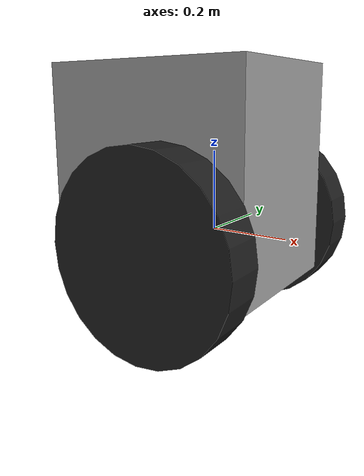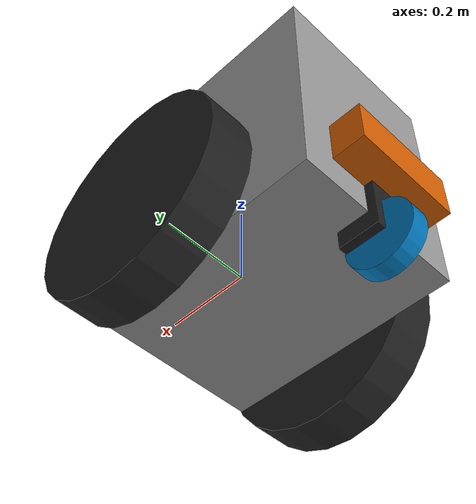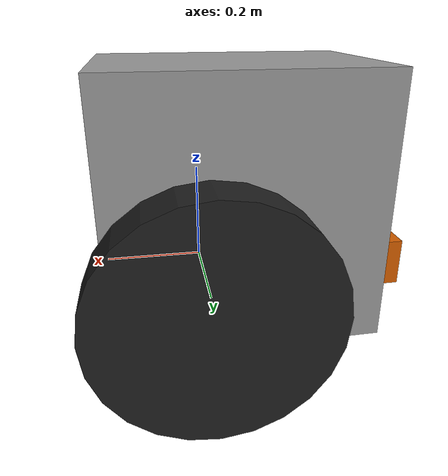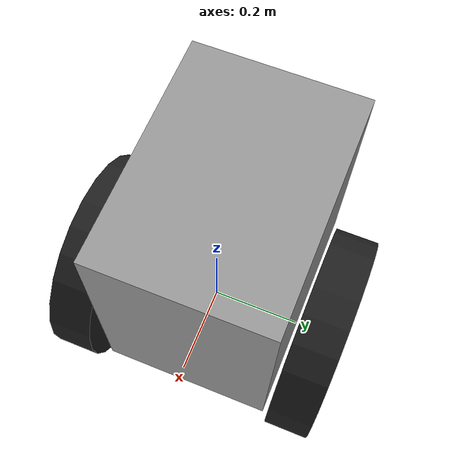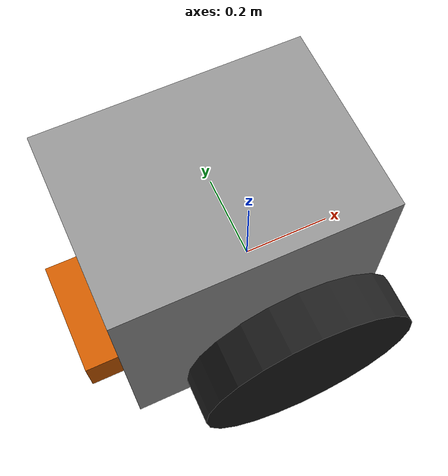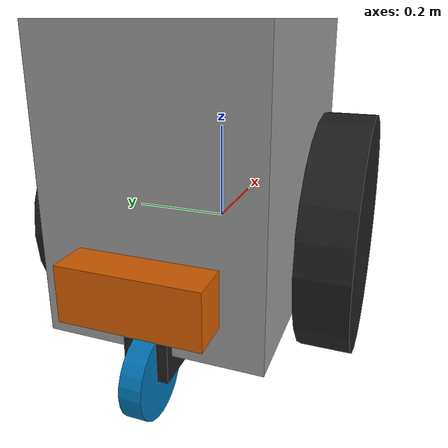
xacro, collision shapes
<?xml version="1.0"?>

<robot xmlns:xacro= "http://wiki.ros.org/xacro" name="Carter_v2">

    <link name="chassis_link">
        <visual>
            <origin rpy="0 0 0" xyz="0 0 0" />
            <geometry>
                <mesh filename="package://chasss_for_urdf2/urdf/carter/meshes/chassis.obj" />
            </geometry>
            <material name="gray"/>
        </visual>
        <collision>
            <origin rpy="0 0 0" xyz="-0.07764248 -0.000000 0.14683718" />
            <geometry>
                <box size=".55 .40 .54"/>
            </geometry>
        </collision>
        <inertial>
            <origin rpy="0 0 0" xyz="-0.07764248 -0.000000 0.14683718" />
            <mass value="45.88" />
            <inertia ixx="1.182744" ixy="0.017957" ixz="-0.077476" iyx="0.017957" iyy="0.538664" iyz="0.000018" izx="-0.077476" izy="0.000018" izz="1.240229"/>
        </inertial>
    </link>
    <link name="left_wheel_link">
        <visual>
            <origin rpy="1.57057 -1.57057 0" xyz="0 0 0" />
            <geometry>
                <mesh filename="package://chasss_for_urdf2/urdf/carter/meshes/side_wheel.obj" />
            </geometry>
            <material name="black"/>
        </visual>
        <collision>
            <origin rpy="1.57057 -1.57057 0" xyz="0 -0.05 0" />
            <geometry>
                <cylinder length = "0.1" radius = "0.240"/>
            </geometry>
        </collision>
        <inertial>
            <origin rpy="0 0 0" xyz="0 -0.05 0" />
            <mass value="4.195729" />
            <inertia ixx="0.063680" ixy="0.000000" ixz="0.000000" iyx="0.000000" iyy="0.121410" iyz="0.000000" izx="0.000000" izy="0.000000" izz="0.063680"/>
        </inertial>
    </link>
    <link name="right_wheel_link">
        <visual>
            <origin rpy="-1.57057 -1.57057 0" xyz="0 0 0" />
            <geometry>
                <mesh filename="package://chasss_for_urdf2/urdf/carter/meshes/side_wheel.obj" />
            </geometry>
            <material name="black"/>
        </visual>
        <collision>
            <origin rpy="-1.57057 -1.57057 0" xyz="0 .05 0" />
            <geometry>
                <cylinder length = "0.1" radius = "0.240"/>
            </geometry>
        </collision>
        <inertial>
            <origin rpy="0 0 0" xyz="0 .05 0" />
            <mass value="4.195729" />
            <inertia ixx="0.063680" ixy="0.000000" ixz="0.000000" iyx="0.000000" iyy="0.121410" iyz="0.000000" izx="0.000000" izy="0.000000" izz="0.063680"/>
        </inertial>
    </link>
    <link name="rear_pivot_link">
        <visual>
            <origin rpy="-1.57057 0 0" xyz="-.03809695 0 -.088" />
            <geometry>
                <mesh filename="package://chasss_for_urdf2/urdf/carter/meshes/pivot.obj" />
            </geometry>
            <material name="black"/>
        </visual>
        <collision>
            <origin rpy="0 0 0" xyz="-.01 0 -.03" />
            <geometry>
                <box size=".09 .08 .12"/>
            </geometry>
        </collision>
        <inertial>
            <origin rpy="0 0 0" xyz="-.01 0 -.03" />
            <mass value="0.579519"/>
            <inertia ixx="0.001361" ixy="-0.000003" ixz="0.000347" iyx="-0.000003" iyy="0.001287" iyz="-0.000010" izx="0.000347" izy="-0.000010" izz="0.000632"/>
        </inertial>
    </link>
    <link name="rear_wheel_link">
        <visual>
            <origin rpy="1.57057 0 0" xyz="0 0 0" />
            <geometry>
                <mesh filename="package://chasss_for_urdf2/urdf/carter/meshes/caster_wheel.obj" />
            </geometry>
        </visual>
        <collision>
            <origin rpy="1.57057 0 0" xyz="0 0 0" />
            <geometry>
                <cylinder length = "0.04" radius = "0.076"/>
            </geometry>
        </collision>
        <inertial>
            <origin rpy="1.57057 0 0" xyz="0.000000 0.000000 0.000000" />
            <mass value="1.25"/>
            <inertia ixx="0.02888" ixy="0.000000" ixz="0.000000" iyx="0.000000" iyy="0.02888" iyz="0.000000" izx="0.000000" izy="0.000000" izz="0.02888"/>
        </inertial>
    </link>
    <link name="com_offset">
        <collision>
            <origin rpy="0 0 0" xyz="0 0 0" />
            <geometry>
                <box size=".25 .25 .1"/>
            </geometry>
        </collision>
        <inertial>
            <origin rpy="0 0 0" xyz="0 0 0" />
            <mass value="20.0" />
            <inertia ixx="1.208" ixy="0" ixz="0" iyy="1.208" iyz="0" izz="2.08" />
        </inertial>
    </link>
    <link name="imu">
        <collision>
            <origin rpy="0 0 0" xyz="0 0 0" />
            <geometry>
                <box size=".1 .1 .1"/>
            </geometry>
        </collision>
        <inertial>
            <origin rpy="0 0 0" xyz="0 0 0" />
            <mass value=".1" />
        </inertial>
    </link>
    <joint name="com_joint" type="fixed">
        <origin rpy="0 0 0" xyz="-.3 0 0" />
        <axis xyz="0 1 0" />
        <parent link="chassis_link" />
        <child link="com_offset" />
    </joint>
    <joint name="imu_joint" type="fixed">
        <origin rpy="0 0 0" xyz="0 0 0" />
        <parent link="chassis_link" />
        <child link="imu" />
    </joint>
    <joint name="left_wheel" type="continuous">
        <origin rpy="0 0 0" xyz="0 0.31420517 0" />
        <axis xyz="0 1 0" />
        <parent link="chassis_link" />
        <child link="left_wheel_link" />
    </joint>
    <joint name="right_wheel" type="continuous">
        <origin rpy="0 0 0" xyz="0 -0.31420517 0" />
        <axis xyz="0 1 0" />
        <parent link="chassis_link" />
        <child link="right_wheel_link" />
    </joint>
    <joint name="rear_pivot" type="continuous">
        <origin rpy="0 0 0" xyz="-0.31613607 0 -.0758" />
        <axis xyz="0 0 1" />
        <parent link="chassis_link" />
        <child link="rear_pivot_link" />
    </joint>
    <joint name="rear_axle" type="continuous">
        <origin rpy="0 0 0" xyz="-.03809695 0 -.08961022" />
        <axis xyz="0 1 0" />
        <parent link="rear_pivot_link" />
        <child link="rear_wheel_link" />
    </joint>

</robot>
